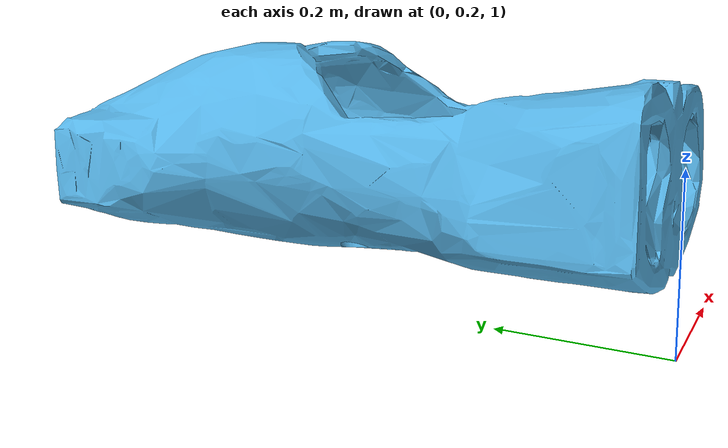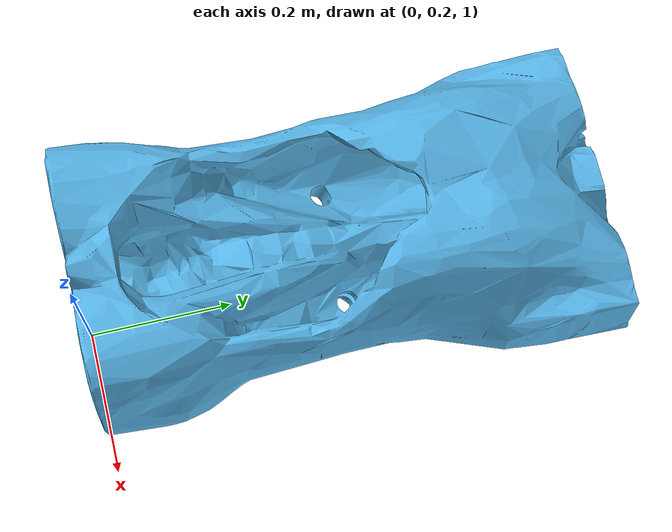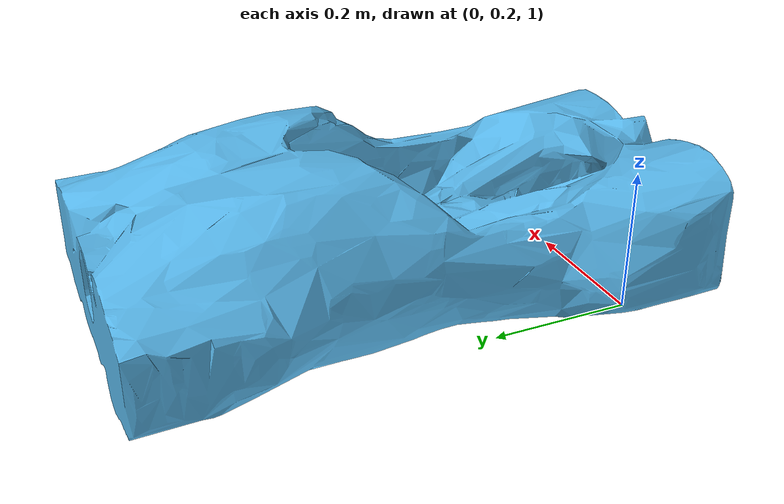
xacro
<?xml version="1.0" ?>
<robot name="body" xmlns:xacro="http://www.ros.org/wiki/xacro">

  <!-- Macros -->
  <!-- Macros -->
  <xacro:include filename="$(find surgical_sim)/urdf/body/torso/torso.urdf.xacro"/>

  <xacro:arg name="with_liver" default="true"/>

  <xacro:macro name="attach_liver" params="parent_link xyz rpy">
    <xacro:create_torso
        parent_link="${parent_link}"
        xyz="${xyz}" rpy="${rpy}"/>
  </xacro:macro>

  <link name="world"/>

  <xacro:if value="$(arg with_liver)">
    <xacro:attach_liver
        parent_link="world"
        xyz="0.0 0.5 1.1" rpy="0.0 0.0 0" />
  </xacro:if>

  <xacro:unless value="$(arg with_liver)">

  </xacro:unless>

    <gazebo>
        <plugin name="gazebo_ros_control" filename="libgazebo_ros_control.so">
        <robotNamespace>/body</robotNamespace>
        <robotSimType>gazebo_ros_control/DefaultRobotHWSim</robotSimType>
        <legacyModeNS>true</legacyModeNS>
        </plugin>
    </gazebo>

</robot>

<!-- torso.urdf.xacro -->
<robot name="body" xmlns:xacro="http://www.ros.org/wiki/xacro">

  <xacro:include filename="$(find surgical_sim)/urdf/body/torso/torso.links.xacro"/>
  <xacro:include filename="$(find surgical_sim)/urdf/body/torso/torso.joints.xacro"/>

  <xacro:macro name="create_torso" params="parent_link xyz rpy">
    <xacro:create_torso_links
          parent_link="${parent_link}"
          xyz="${xyz}" rpy="${rpy}"/>
    <xacro:create_torso_joints
          parent_link="${parent_link}"
          xyz="${xyz}" rpy="${rpy}"/>
  </xacro:macro>

</robot>

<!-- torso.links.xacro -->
<robot name="body" xmlns:xacro="http://www.ros.org/wiki/xacro">

<xacro:include filename="$(find surgical_sim)/urdf/body/templates/gazebo.links.xacro"/>

  <xacro:macro name="create_torso_links" params="parent_link xyz rpy">

    <!-- link 1: torso_link -->
    <link name="torso_link">
      <visual>
        <origin rpy="${-pi/2} 0 0" xyz="0 0 0"/>
        <geometry>
          <mesh filename="package://surgical_sim/model/meshes/dae/body/torso.dae"/>
        </geometry>
      </visual>
      <collision>
        <origin rpy="${-pi/2} 0 0" xyz="0 0 0"/>
        <geometry>
          <mesh filename="package://surgical_sim/model/meshes/stl/body/torso_simp.stl"/>
        </geometry>
      </collision>
      <inertial>
				<origin xyz="0 0 0" rpy="0 0 0"/>
				<mass value="30"/>
				<inertia ixx="0.5" ixy="0.0" ixz="0.0" iyy="0.5" iyz="0.0" izz="0.5"/>
			</inertial>
    </link>

   <link name="/left/trocar_link"/>
   <link name="/right/trocar_link"/>

   <xacro:gazebo_links name="torso_link"/>

  </xacro:macro>

</robot>

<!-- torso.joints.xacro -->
<robot name="body" xmlns:xacro="http://www.ros.org/wiki/xacro">

  <xacro:include filename="$(find surgical_sim)/urdf/body/templates/joint.transmissions.xacro"/>
  <xacro:include filename="$(find surgical_sim)/urdf/body/templates/gazebo.joints.xacro"/>

  <xacro:macro name="create_torso_joints" params="parent_link xyz rpy">

    <!-- joint 1 -->
    <joint name="torso_joint" type="fixed">
      <parent link="${parent_link}"/>
      <child link="torso_link"/>
      <axis xyz="0 0 1"/>
      <origin rpy="${rpy}" xyz="${xyz}"/>
    </joint>

    <joint name="right_trocar_joint" type="fixed">
      <parent link="torso_link"/>
      <child link="/right/trocar_link"/>
      <axis xyz="0 0 1"/>
      <origin rpy="0 0 ${pi/2}" xyz="0.015 0.015 0.2"/>
    </joint>

    <joint name="left_trocar_joint" type="fixed">
      <parent link="torso_link"/>
      <child link="/left/trocar_link"/>
      <axis xyz="0 0 1"/>
      <origin rpy="0 0 ${pi/2}" xyz="0.0 0.0 0.2"/>
    </joint>

    <xacro:gazebo_joints name="torso_joint"/>

  </xacro:macro>
</robot>
